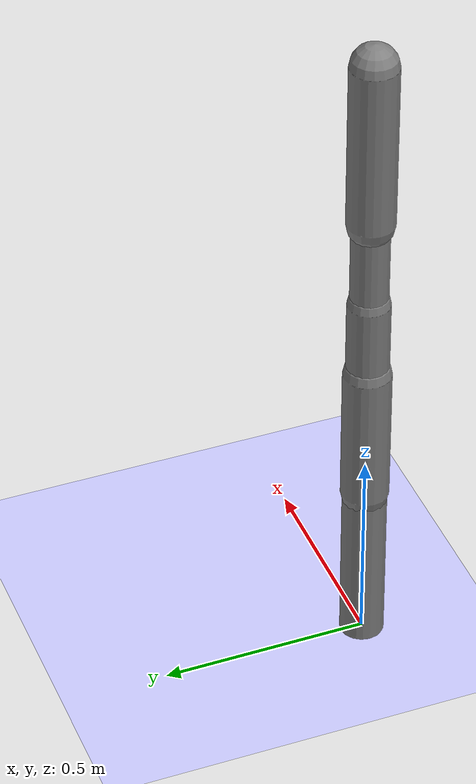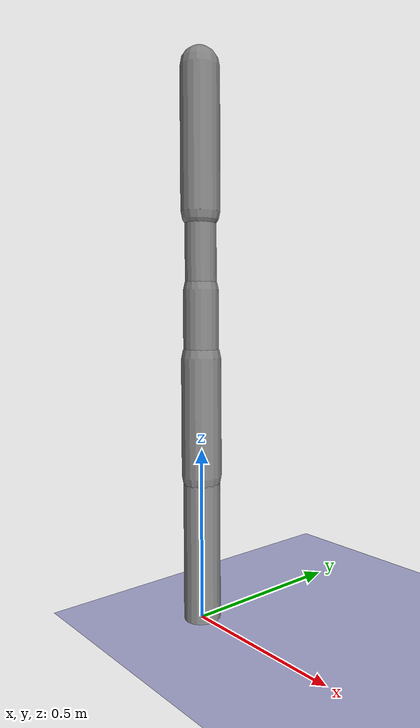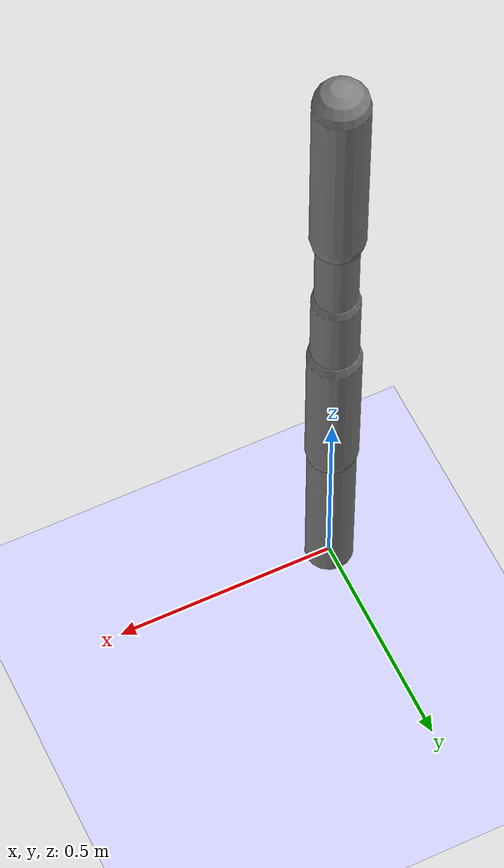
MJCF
<?xml version='1.0' encoding='UTF-8'?>
<mujoco model="robot_model">
  <worldbody>
    <light name="light" pos="0 -3 10" dir="0 0.5 -1" diffuse=".8 .8 .8" specular="0.1 0.1 0.1"/>
    <geom name="floor" type="plane" size="10.0 10.0 0.1" pos="0 0 0" rgba="0.8 0.8 1 1" contype="2" conaffinity="1"/>
    <body name="limb0" pos="0 0 0">
      <geom type="capsule" fromto="0 0 0 0 0 0.5102095799373745" size="0.05337964280287761" density="591.8045561190766" contype="1" conaffinity="2"/>
      <site type="sphere" size="0.01" name="limb0_site0" pos="0 0 0.4221132956250331"/>
      <site type="sphere" size="0.01" name="limb0_site1" pos="0 0 0.4289725226483286"/>
      <freejoint name="limb0_root"/>
      <body name="limb1" pos="0 0 0.4221132956250331">
        <geom type="capsule" fromto="0 0 0 0 0 0.34784341191026547" size="0.05780096325172323" density="1003.386613734127" contype="1" conaffinity="2"/>
        <site type="sphere" size="0.01" name="limb1_site0" pos="0 0 0.33235869606856727"/>
        <site type="sphere" size="0.01" name="limb1_site1" pos="0 0 0.09085494210317346"/>
        <site type="sphere" size="0.01" name="limb1_site2" pos="0 0 0.06927704373718688"/>
        <body name="limb2" pos="0 0 0.33235869606856727">
          <geom type="capsule" fromto="0 0 0 0 0 0.5" size="0.045329815490319995" density="1017.2531489540214" contype="1" conaffinity="2"/>
          <site type="sphere" size="0.01" name="limb2_site0" pos="0 0 0.28431863432086774"/>
          <site type="sphere" size="0.01" name="limb2_site1" pos="0 0 0.4365154153176309"/>
          <site type="sphere" size="0.01" name="limb2_site2" pos="0 0 0.1982484344008178"/>
          <body name="limb3" pos="0 0 0.28431863432086774">
            <geom type="capsule" fromto="0 0 0 0 0 0.19166066799868264" size="0.0314707546179414" density="956.2416848734547" contype="1" conaffinity="2"/>
            <joint name="joint_limb2_limb3_0" type="hinge" axis="0 1 0" range="-51.59203017742993 51.59203017742993" damping="5.0"/>
          </body>
          <body name="limb4" pos="0 0 0.4365154153176309">
            <geom type="capsule" fromto="0 0 0 0 0 0.4099091979905216" size="0.05692125839649371" density="1038.7184863029725" contype="1" conaffinity="2"/>
            <joint name="joint_limb2_limb4_0" type="hinge" axis="1 0 0" range="-38.680136556965635 38.680136556965635" damping="5.0"/>
          </body>
          <body name="limb5" pos="0 0 0.1982484344008178">
            <geom type="capsule" fromto="0 0 0 0 0 0.2915545876731404" size="0.041653011905912966" density="980.8720051175214" contype="1" conaffinity="2"/>
            <joint name="joint_limb2_limb5_0" type="hinge" axis="0 1 0" range="-107.14717313770412 107.14717313770412" damping="5.0"/>
          </body>
          <joint name="joint_limb1_limb2_0" type="hinge" axis="0 1 0" range="-60.504894728636025 60.504894728636025" damping="5.0"/>
        </body>
        <body name="limb6" pos="0 0 0.09085494210317346">
          <geom type="capsule" fromto="0 0 0 0 0 0.4553959547646001" size="0.05112992904407712" density="905.1932138092933" contype="1" conaffinity="2"/>
          <joint name="joint_limb1_limb6_0" type="hinge" axis="0 0 1" range="-72.98973823003674 72.98973823003674" damping="5.0"/>
        </body>
        <body name="limb7" pos="0 0 0.06927704373718688">
          <geom type="capsule" fromto="0 0 0 0 0 0.44552404738132806" size="0.039556271122214166" density="1076.0934479971258" contype="1" conaffinity="2"/>
          <joint name="joint_limb1_limb7_0" type="hinge" axis="0 0 1" range="-20.0 20.0" damping="5.0"/>
        </body>
        <joint name="joint_limb0_limb1_0" type="hinge" axis="0 1 0" range="-97.72934962860585 97.72934962860585" damping="5.0"/>
      </body>
      <body name="limb8" pos="0 0 0.4289725226483286">
        <geom type="capsule" fromto="0 0 0 0 0 0.16901349670638882" size="0.029773060920250092" density="867.1563718257595" contype="1" conaffinity="2"/>
        <joint name="joint_limb0_limb8_0" type="hinge" axis="0 1 0" range="-63.22844417036358 63.22844417036358" damping="5.0"/>
      </body>
    </body>
  </worldbody>
  <actuator>
    <position name="position_actuator_joint_limb0_limb1_0" joint="joint_limb0_limb1_0" gear="2.0" inheritrange="1" forcerange="-22.374671965647444 22.374671965647444" forcelimited="true" kp="100.0"/>
    <position name="position_actuator_joint_limb1_limb2_0" joint="joint_limb1_limb2_0" gear="1.855224638398584" inheritrange="1" forcerange="-18.401183504925072 18.401183504925072" forcelimited="true" kp="100.0"/>
    <position name="position_actuator_joint_limb2_limb3_0" joint="joint_limb2_limb3_0" gear="1.8009346564222402" inheritrange="1" forcerange="-3.4754816031092273 3.4754816031092273" forcelimited="true" kp="100.0"/>
    <position name="position_actuator_joint_limb2_limb4_0" joint="joint_limb2_limb4_0" gear="1.5727331217504008" inheritrange="1" forcerange="-25.681950043152263 25.681950043152263" forcelimited="true" kp="100.0"/>
    <position name="position_actuator_joint_limb2_limb5_0" joint="joint_limb2_limb5_0" gear="0.7060054095369748" inheritrange="1" forcerange="-9.27832460712748 9.27832460712748" forcelimited="true" kp="100.0"/>
    <position name="position_actuator_joint_limb1_limb6_0" joint="joint_limb1_limb6_0" gear="0.7499793276035607" inheritrange="1" forcerange="-19.46191769120985 19.46191769120985" forcelimited="true" kp="100.0"/>
    <position name="position_actuator_joint_limb1_limb7_0" joint="joint_limb1_limb7_0" gear="1.7866470493797637" inheritrange="1" forcerange="-13.178366538205218 13.178366538205218" forcelimited="true" kp="100.0"/>
    <position name="position_actuator_joint_limb0_limb8_0" joint="joint_limb0_limb8_0" gear="1.068427433655958" inheritrange="1" forcerange="-2.5200515399804724 2.5200515399804724" forcelimited="true" kp="100.0"/>
  </actuator>
</mujoco>
